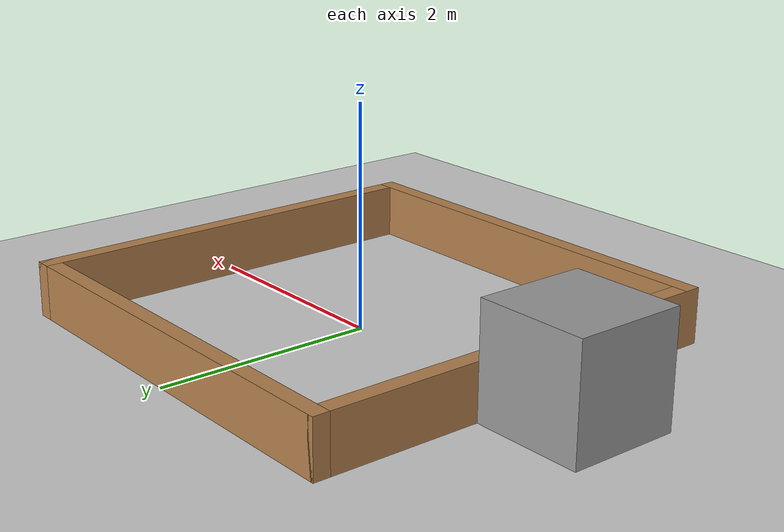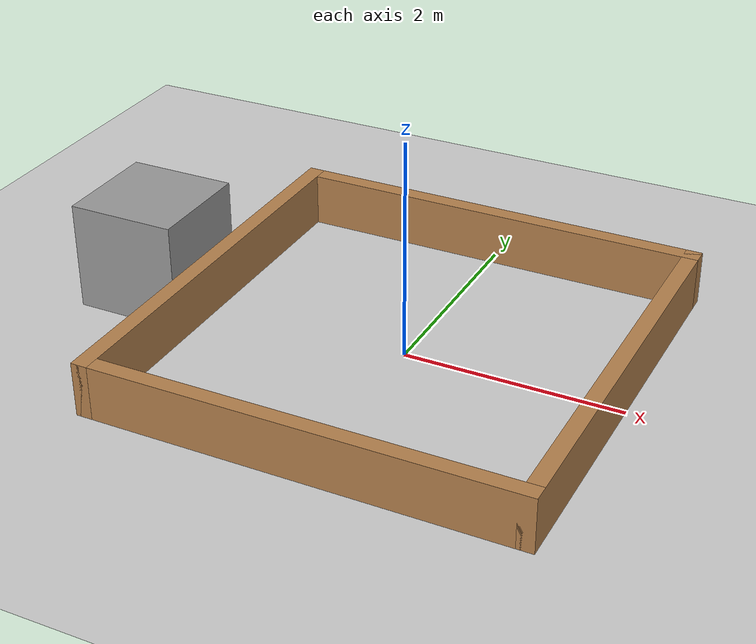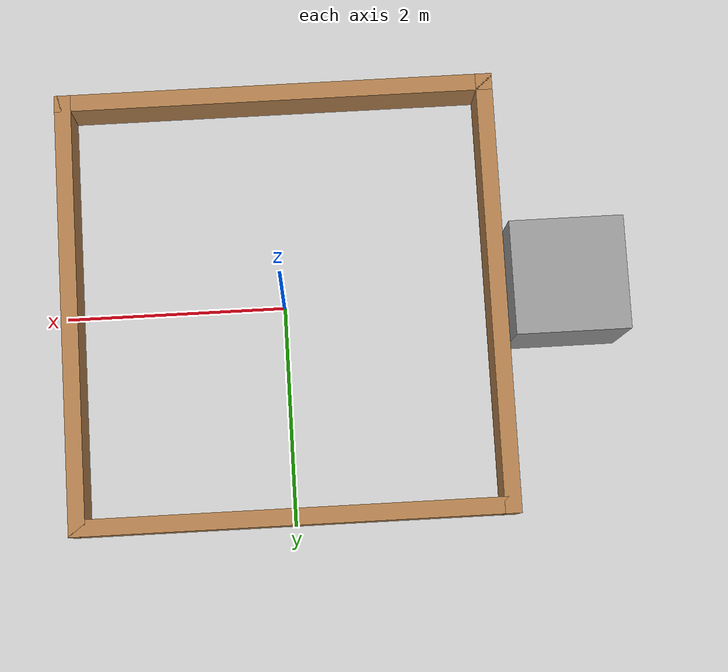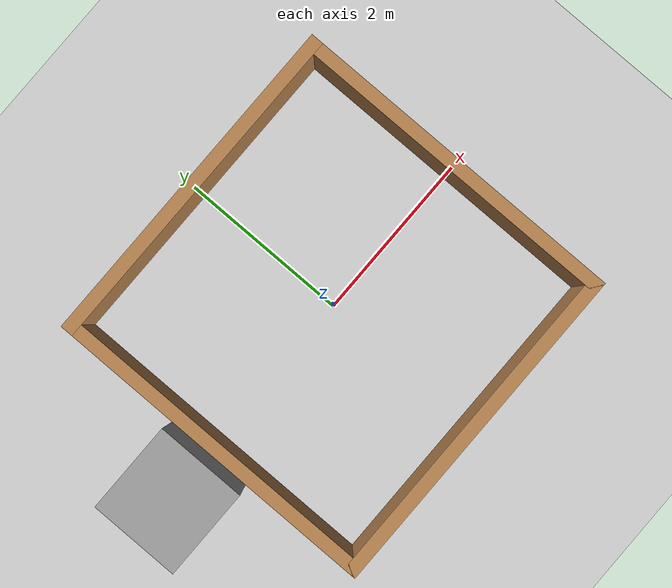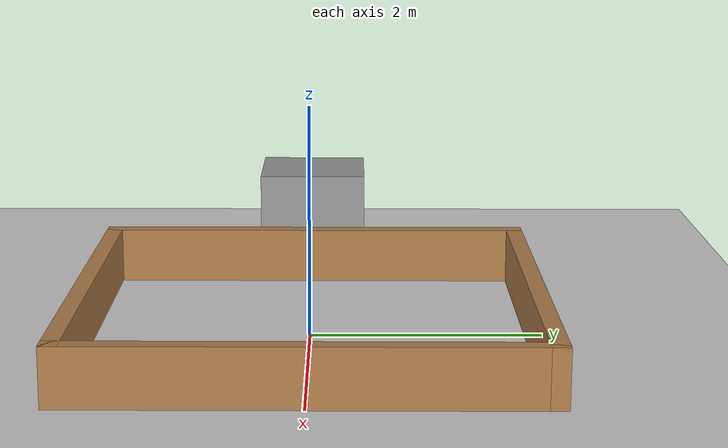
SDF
<sdf version="1.6">
 <world name="default">
  <light name="sun" type="directional">
   <pose>0 0 10 0 -0 0</pose>
   <diffuse>0.8 0.8 0.8 1</diffuse>
   <specular>0.1 0.1 0.1 1</specular>
   <attenuation>
    <range>1000</range>
    <constant>0.9</constant>
    <linear>0.01</linear>
    <quadratic>0.001</quadratic>
   </attenuation>
   <direction>-0.5 0.5 -1</direction>
  </light>
  <model name="ground_plane">
   <static>1</static>
   <link name="link">
    <collision name="collision">
     <geometry><plane><normal>0 0 1</normal><size>100 100</size></plane></geometry>
     <surface><friction><ode><mu>100</mu><mu2>50</mu2></ode></friction></surface>
    </collision>
    <visual name="visual">
     <cast_shadows>0</cast_shadows>
     <geometry><plane><normal>0 0 1</normal><size>100 100</size></plane></geometry>
     <material>
      <script><uri>file://media/materials/scripts/gazebo.material</uri><name>Gazebo/Grey</name></script>
     </material>
    </visual>
   </link>
  </model>
  <physics name="default_physics" default="0" type="ode">
   <real_time_update_rate>1000</real_time_update_rate>
   <max_step_size>0.001</max_step_size>
   <real_time_factor>1</real_time_factor>
   <ode>
    <solver>
     <type>quick</type>
     <iters>150</iters>
     <precon_iters>0</precon_iters>
     <sor>1.4</sor>
     <use_dynamic_moi_rescaling>1</use_dynamic_moi_rescaling>
    </solver>
    <constraints>
     <cfm>1e-05</cfm>
     <erp>0.2</erp>
     <contact_max_correcting_vel>2000</contact_max_correcting_vel>
     <contact_surface_layer>0.01</contact_surface_layer>
    </constraints>
   </ode>
  </physics>
  <model name="turtlebot3_square">
   <link name="Wall_0">
    <collision name="Wall_0_Collision">
     <geometry><box><size>4 0.15 0.5</size></box></geometry>
     <pose>0 0 0.25 0 -0 0</pose>
    </collision>
    <visual name="Wall_0_Visual">
     <pose>0 0 0.25 0 -0 0</pose>
     <geometry><box><size>4 0.15 0.5</size></box></geometry>
     <material>
      <script><uri>file://media/materials/scripts/gazebo.material</uri><name>Gazebo/Wood</name></script>
      <ambient>1 1 1 1</ambient>
     </material>
    </visual>
    <pose>0 1.925 0 0 -0 0</pose>
   </link>
   <link name="Wall_2">
    <collision name="Wall_2_Collision">
     <geometry><box><size>4 0.15 0.5</size></box></geometry>
     <pose>0 0 0.25 0 -0 0</pose>
    </collision>
    <visual name="Wall_2_Visual">
     <pose>0 0 0.25 0 -0 0</pose>
     <geometry><box><size>4 0.15 0.5</size></box></geometry>
     <material>
      <script><uri>file://media/materials/scripts/gazebo.material</uri><name>Gazebo/Wood</name></script>
      <ambient>1 1 1 1</ambient>
     </material>
    </visual>
    <pose>-1.925 0 0 0 0 -1.5708</pose>
   </link>
   <link name="Wall_3">
    <collision name="Wall_3_Collision">
     <geometry><box><size>4 0.15 0.5</size></box></geometry>
     <pose>0 0 0.25 0 -0 0</pose>
    </collision>
    <visual name="Wall_3_Visual">
     <pose>0 0 0.25 0 -0 0</pose>
     <geometry><box><size>4 0.15 0.5</size></box></geometry>
     <material>
      <script><uri>file://media/materials/scripts/gazebo.material</uri><name>Gazebo/Wood</name></script>
      <ambient>1 1 1 1</ambient>
     </material>
    </visual>
    <pose>0 -1.925 0 0 -0 0</pose>
   </link>
   <link name="Wall_4">
    <collision name="Wall_4_Collision">
     <geometry><box><size>4 0.15 0.5</size></box></geometry>
     <pose>0 0 0.25 0 -0 0</pose>
    </collision>
    <visual name="Wall_4_Visual">
     <pose>0 0 0.25 0 -0 0</pose>
     <geometry><box><size>4 0.15 0.5</size></box></geometry>
     <material>
      <script><uri>file://media/materials/scripts/gazebo.material</uri><name>Gazebo/Wood</name></script>
      <ambient>1 1 1 1</ambient>
     </material>
    </visual>
    <pose>1.925 0 0 0 -0 1.5708</pose>
   </link>
   <static>1</static>
  </model>
  <scene><ambient>0.4 0.4 0.4 1</ambient><background>0.7 0.7 0.7 1</background><shadows>1</shadows></scene>
  <gravity>0 0 -9.8</gravity>
  <magnetic_field>6e-06 2.3e-05 -4.2e-05</magnetic_field>
  <atmosphere type="adiabatic"/>
  <spherical_coordinates>
   <surface_model>EARTH_WGS84</surface_model>
   <latitude_deg>0</latitude_deg>
   <longitude_deg>0</longitude_deg>
   <elevation>0</elevation>
   <heading_deg>0</heading_deg>
  </spherical_coordinates>
  <light name="user_point_light_0" type="point">
   <pose>-0.345288 0.122453 1 0 -0 0</pose>
   <diffuse>0.5 0.5 0.5 1</diffuse>
   <specular>0.1 0.1 0.1 1</specular>
   <attenuation>
    <range>20</range>
    <constant>0.5</constant>
    <linear>0.01</linear>
    <quadratic>0.001</quadratic>
   </attenuation>
   <cast_shadows>0</cast_shadows>
   <direction>0 0 -1</direction>
  </light>
  <light name="user_directional_light_0" type="directional">
   <pose>-1.56979 -1.06942 1 0 -0 0</pose>
   <diffuse>0.5 0.5 0.5 1</diffuse>
   <specular>0.1 0.1 0.1 1</specular>
   <direction>0.1 0.1 -0.9</direction>
   <attenuation>
    <range>20</range>
    <constant>0.5</constant>
    <linear>0.01</linear>
    <quadratic>0.001</quadratic>
   </attenuation>
  </light>
  <light name="user_directional_light_1" type="directional">
   <pose>0.43517 0.072138 1 0 -0 0</pose>
   <diffuse>0.5 0.5 0.5 1</diffuse>
   <specular>0.1 0.1 0.1 1</specular>
   <direction>0.1 0.1 -0.9</direction>
   <attenuation>
    <range>20</range>
    <constant>0.5</constant>
    <linear>0.01</linear>
    <quadratic>0.001</quadratic>
   </attenuation>
  </light>
  <model name="unit_box_0">
   <pose>-2.5 -0.018027 0.5 0 0 -5e-06</pose>
   <link name="link">
    <inertial>
     <mass>1</mass>
     <inertia>
      <ixx>0.166667</ixx>
      <ixy>0</ixy>
      <ixz>0</ixz>
      <iyy>0.166667</iyy>
      <iyz>0</iyz>
      <izz>0.166667</izz>
     </inertia>
    </inertial>
    <collision name="collision"><geometry><box><size>1 1 1</size></box></geometry></collision>
    <visual name="visual">
     <geometry><box><size>1 1 1</size></box></geometry>
     <material>
      <script><name>Gazebo/Grey</name><uri>file://media/materials/scripts/gazebo.material</uri></script>
     </material>
    </visual>
   </link>
  </model>
  <light name="user_point_light_1" type="point">
   <pose>-0.012616 0.093298 1 0 -0 0</pose>
   <diffuse>0.5 0.5 0.5 1</diffuse>
   <specular>0.1 0.1 0.1 1</specular>
   <attenuation>
    <range>20</range>
    <constant>0.5</constant>
    <linear>0.01</linear>
    <quadratic>0.001</quadratic>
   </attenuation>
   <cast_shadows>0</cast_shadows>
   <direction>0 0 -1</direction>
  </light>
 </world>
</sdf>
